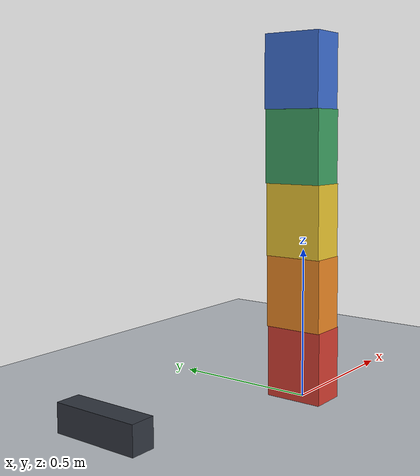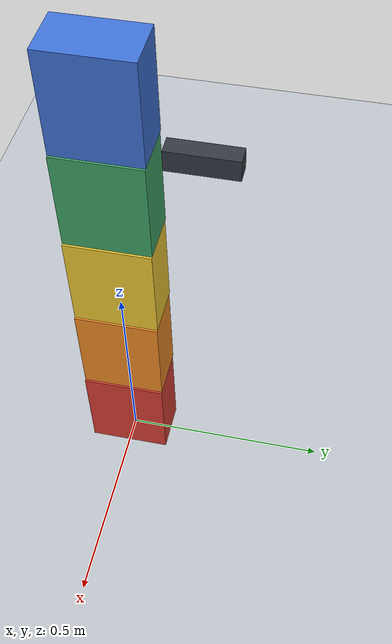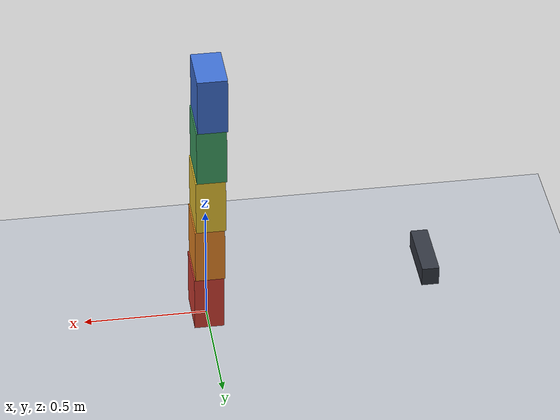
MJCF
<mujoco model="five_block_topple">
  <compiler angle="radian"/>
  <option timestep="0.002" gravity="0 0 -9.81" integrator="implicitfast" solver="Newton" iterations="100" cone="elliptic"/>
  <visual>
    <headlight ambient="0.4 0.4 0.4" diffuse="0.7 0.7 0.7" specular="0.2 0.2 0.2"/>
  </visual>
  <worldbody>
    <light name="overhead" pos="-1 -2 4" dir="0.2 0.3 -1"/>
    <camera name="overview" pos="2.6 -3.5 2.0" xyaxes="0.803 0.596 0 -0.190 0.256 0.948"/>
    <geom name="floor" type="plane" size="5 5 0.1" rgba="0.75 0.77 0.80 1" friction="1.0 0.01 0.001" condim="3" solref="0.006 1"/>

    <body name="block1" pos="0 0 0.12">
      <freejoint name="block1_free"/>
      <geom name="block1_geom" type="box" size="0.06 0.10 0.12" mass="0.5" rgba="0.85 0.25 0.20 1" friction="0.4 0.01 0.001" condim="3" solref="0.006 1"/>
    </body>
    <body name="block2" pos="-0.005 0 0.36">
      <freejoint name="block2_free"/>
      <geom name="block2_geom" type="box" size="0.06 0.10 0.12" mass="0.5" rgba="0.95 0.55 0.15 1" friction="0.4 0.01 0.001" condim="3" solref="0.006 1"/>
    </body>
    <body name="block3" pos="-0.010 0 0.60">
      <freejoint name="block3_free"/>
      <geom name="block3_geom" type="box" size="0.06 0.10 0.12" mass="0.5" rgba="0.95 0.80 0.20 1" friction="0.4 0.01 0.001" condim="3" solref="0.006 1"/>
    </body>
    <body name="block4" pos="-0.015 0 0.84">
      <freejoint name="block4_free"/>
      <geom name="block4_geom" type="box" size="0.06 0.10 0.12" mass="0.5" rgba="0.25 0.65 0.40 1" friction="0.4 0.01 0.001" condim="3" solref="0.006 1"/>
    </body>
    <body name="block5" pos="-0.020 0 1.08">
      <freejoint name="block5_free"/>
      <geom name="block5_geom" type="box" size="0.06 0.10 0.12" mass="0.5" rgba="0.25 0.45 0.85 1" friction="0.4 0.01 0.001" condim="3" solref="0.006 1"/>
    </body>

    <body name="pusher" pos="-0.9 0 0.18">
      <joint name="pusher_slide" type="slide" axis="1 0 0" limited="true" range="0 1.5" damping="1" solreflimit="0.008 1"/>
      <geom name="pusher_geom" type="box" size="0.035 0.13 0.04" mass="2" rgba="0.20 0.22 0.26 1" friction="0.3 0.01 0.001" condim="3" solref="0.006 1"/>
    </body>
  </worldbody>

  <actuator>
    <velocity name="pusher_motor" joint="pusher_slide" kv="200" ctrllimited="true" ctrlrange="0 1.5" forcelimited="true" forcerange="-150 150"/>
  </actuator>

  <keyframe>
    <key name="start" qpos="0 0 0.12 1 0 0 0  -0.005 0 0.36 1 0 0 0  -0.010 0 0.60 1 0 0 0  -0.015 0 0.84 1 0 0 0  -0.020 0 1.08 1 0 0 0  0" ctrl="1.5"/>
  </keyframe>
</mujoco>
